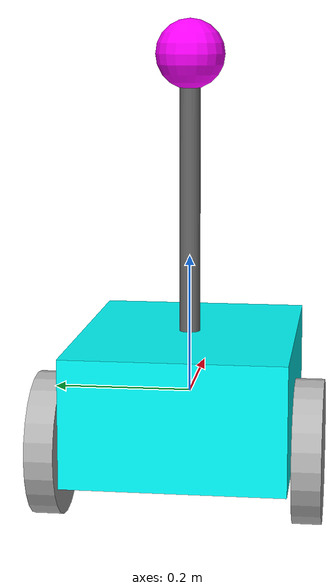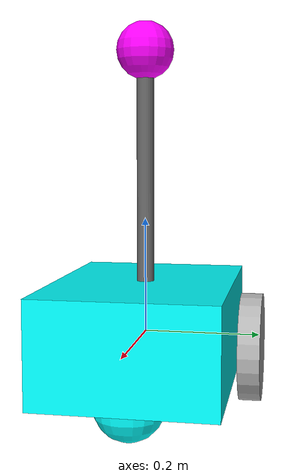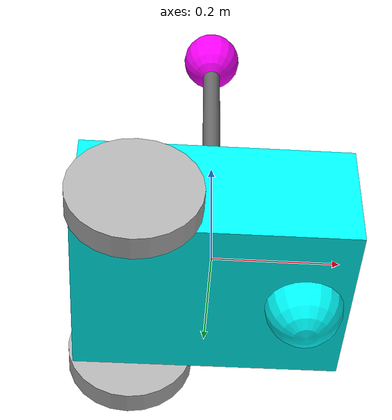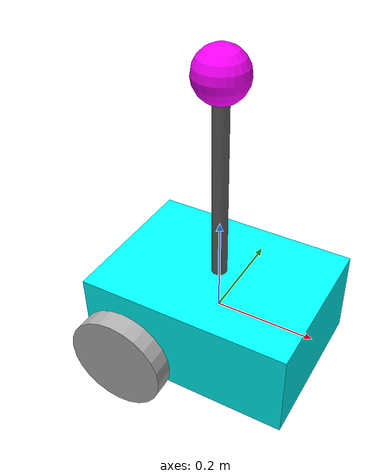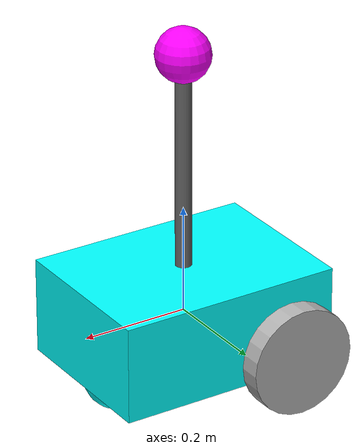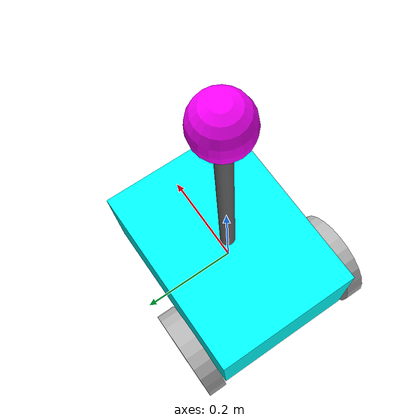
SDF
<?xml version="1.0" ?>
<!-- |    This document was autogenerated by xacro from /home/faza/topoMapWs/src/scenarios/models/ddmr/model.sdf.xacro | -->
<!-- |    EDITING THIS FILE BY HAND IS NOT RECOMMENDED                                 | -->
<sdf version="1.8">
  <model canonical_link="base_link" name="ddmr">
    <!-- Robot Base -->
    <link name="base_link">
      <must_be_base_link>true</must_be_base_link>
      <visual name="base_link_visual">
        <geometry>
          <box>
            <size>
            0.42 0.31 0.18
          </size>
          </box>
        </geometry>
        <material>
          <ambient>0 1 1 1</ambient>
          <diffuse>0 1 1 1</diffuse>
        </material>
      </visual>
      <collision name="base_link_collision">
        <geometry>
          <box>
            <size>
            0.42 0.31 0.18
          </size>
          </box>
        </geometry>
      </collision>
    </link>
    <!-- Robot Footprint -->
    <link name="base_footprint">
      <pose relative_to="base_joint"/>
      <inertial>
        <pose>0 0 0 1.5707963267948966 0 1.5707963267948966</pose>
        <mass>15</mass>
        <inertia>
          <ixx>0.261</ixx>
          <ixy>0.0</ixy>
          <ixz>0.0</ixz>
          <iyy>0.34062499999999996</iyy>
          <iyz>0.0</iyz>
          <izz>0.16062500000000002</izz>
        </inertia>
      </inertial>
    </link>
    <joint name="base_joint" type="fixed">
      <parent>base_link</parent>
      <child>base_footprint</child>
      <pose relative_to="base_link">0.0 0.0 -0.15000000000000002 0 0 0</pose>
    </joint>
    <link name="drivewhl_l_link">
      <pose relative_to="drivewhl_l_joint"/>
      <visual name="drivewhl_l_link_visual">
        <pose relative_to="drivewhl_l_link">0 0 0 1.5707963267948966 0 0</pose>
        <geometry>
          <cylinder>
            <radius>0.1</radius>
            <length>0.04</length>
          </cylinder>
        </geometry>
        <material>
          <ambient>0.3 0.3 0.3 1.0</ambient>
          <diffuse>0.7 0.7 0.7 1.0</diffuse>
        </material>
      </visual>
      <collision name="drivewhl_l_link_collision">
        <pose relative_to="drivewhl_l_link">0 0 0 1.5707963267948966 0 0</pose>
        <geometry>
          <cylinder>
            <radius>0.1</radius>
            <length>0.04</length>
          </cylinder>
        </geometry>
        <surface>
          <friction>
            <ode>
              <!-- high traction forward -->
              <mu>1.0</mu>
              <mu2>0.02</mu2>
              <!-- wheel rolling direction -->
              <fdir1>0 1 0</fdir1>
              <slip1>0.0</slip1>
              <slip2>0.4</slip2>
            </ode>
          </friction>
        </surface>
      </collision>
      <inertial>
        <pose>0 0 0 1.5707963267948966 0 0</pose>
        <mass>0.5</mass>
        <inertia>
          <ixx>0.0013166666666666667</ixx>
          <ixy>0.0</ixy>
          <ixz>0.0</ixz>
          <iyy>0.0013166666666666667</iyy>
          <iyz>0.0</iyz>
          <izz>0.0025000000000000005</izz>
        </inertia>
      </inertial>
    </link>
    <joint name="drivewhl_l_joint" type="revolute">
      <parent>base_link</parent>
      <child>drivewhl_l_link</child>
      <pose relative_to="base_link">-0.12 0.18 -0.05 0 0 0</pose>
      <axis>
        <xyz>0 1 0</xyz>
        <limit>
          <lower>-1e16</lower>
          <upper>1e16</upper>
        </limit>
        <dynamics>
          <damping>0.05</damping>
          <friction>0.0</friction>
        </dynamics>
      </axis>
    </joint>
    <link name="drivewhl_r_link">
      <pose relative_to="drivewhl_r_joint"/>
      <visual name="drivewhl_r_link_visual">
        <pose relative_to="drivewhl_r_link">0 0 0 1.5707963267948966 0 0</pose>
        <geometry>
          <cylinder>
            <radius>0.1</radius>
            <length>0.04</length>
          </cylinder>
        </geometry>
        <material>
          <ambient>0.3 0.3 0.3 1.0</ambient>
          <diffuse>0.7 0.7 0.7 1.0</diffuse>
        </material>
      </visual>
      <collision name="drivewhl_r_link_collision">
        <pose relative_to="drivewhl_r_link">0 0 0 1.5707963267948966 0 0</pose>
        <geometry>
          <cylinder>
            <radius>0.1</radius>
            <length>0.04</length>
          </cylinder>
        </geometry>
        <surface>
          <friction>
            <ode>
              <!-- high traction forward -->
              <mu>1.0</mu>
              <mu2>0.02</mu2>
              <!-- wheel rolling direction -->
              <fdir1>0 1 0</fdir1>
              <slip1>0.0</slip1>
              <slip2>0.4</slip2>
            </ode>
          </friction>
        </surface>
      </collision>
      <inertial>
        <pose>0 0 0 1.5707963267948966 0 0</pose>
        <mass>0.5</mass>
        <inertia>
          <ixx>0.0013166666666666667</ixx>
          <ixy>0.0</ixy>
          <ixz>0.0</ixz>
          <iyy>0.0013166666666666667</iyy>
          <iyz>0.0</iyz>
          <izz>0.0025000000000000005</izz>
        </inertia>
      </inertial>
    </link>
    <joint name="drivewhl_r_joint" type="revolute">
      <parent>base_link</parent>
      <child>drivewhl_r_link</child>
      <pose relative_to="base_link">-0.12 -0.18 -0.05 0 0 0</pose>
      <axis>
        <xyz>0 1 0</xyz>
        <limit>
          <lower>-1e16</lower>
          <upper>1e16</upper>
        </limit>
        <dynamics>
          <damping>0.05</damping>
          <friction>0.0</friction>
        </dynamics>
      </axis>
    </joint>
    <link name="front_caster">
      <pose relative_to="caster_joint"/>
      <visual name="front_caster_visual">
        <geometry>
          <sphere>
            <radius>0.060000000000000026</radius>
          </sphere>
        </geometry>
        <material>
          <ambient>0 1 1 1</ambient>
          <diffuse>0 1 1 1</diffuse>
        </material>
      </visual>
      <collision name="front_caster_collision">
        <geometry>
          <sphere>
            <radius>0.060000000000000026</radius>
          </sphere>
        </geometry>
        <surface>
          <friction>
            <ode>
              <mu>0.01</mu>
              <mu2>0.01</mu2>
            </ode>
          </friction>
        </surface>
      </collision>
      <inertial>
        <mass>0.5</mass>
        <inertia>
          <ixx>0.0007200000000000006</ixx>
          <ixy>0.0</ixy>
          <ixz>0.0</ixz>
          <iyy>0.0007200000000000006</iyy>
          <iyz>0.0</iyz>
          <izz>0.0007200000000000006</izz>
        </inertia>
      </inertial>
    </link>
    <joint name="caster_joint" type="fixed">
      <parent>base_link</parent>
      <child>front_caster</child>
      <pose relative_to="base_link">0.14 0.0 -0.09 0 0 0</pose>
    </joint>
    <!-- ================= LiDAR Mount ================= -->
    <link name="lidar_mount">
      <pose relative_to="base_link">
        0.0
        0.0
        0.29
        0 0 0
    </pose>
      <inertial>
        <mass>0.1</mass>
        <inertia>
          <ixx>0.0001</ixx>
          <iyy>0.0001</iyy>
          <izz>0.0001</izz>
          <ixy>0</ixy>
          <ixz>0</ixz>
          <iyz>0</iyz>
        </inertia>
      </inertial>
      <visual name="mount_visual">
        <geometry>
          <cylinder>
            <radius>0.015</radius>
            <length>0.4</length>
          </cylinder>
        </geometry>
        <material>
          <ambient>0.2 0.2 0.2 1</ambient>
          <diffuse>0.4 0.4 0.4 1</diffuse>
        </material>
      </visual>
      <collision name="mount_collision">
        <geometry>
          <cylinder>
            <radius>0.015</radius>
            <length>0.4</length>
          </cylinder>
        </geometry>
      </collision>
    </link>
    <joint name="lidar_mount_joint" type="fixed">
      <parent>base_link</parent>
      <child>lidar_mount</child>
    </joint>
    <!-- ================= LiDAR ================= -->
    <link name="lidar_link">
      <pose relative_to="lidar_mount">
        0.0
        0.0
        0.2
        0 0 0
    </pose>
      <inertial>
        <mass>1.0</mass>
        <inertia>
          <ixx>0.01</ixx>
          <iyy>0.01</iyy>
          <izz>0.01</izz>
          <ixy>0</ixy>
          <ixz>0</ixz>
          <iyz>0</iyz>
        </inertia>
      </inertial>
      <visual name="visual">
        <geometry>
          <sphere>
            <radius>0.05</radius>
          </sphere>
        </geometry>
        <material>
          <ambient>1 0 1 1</ambient>
          <diffuse>1 0 1 1</diffuse>
        </material>
      </visual>
      <collision name="collision">
        <geometry>
          <sphere>
            <radius>0.05</radius>
          </sphere>
        </geometry>
      </collision>
      <sensor name="lidar" type="gpu_lidar">
        <update_rate>10</update_rate>
        <topic>points</topic>
        <pose>0 0 0 0 0 0</pose>
        <ray>
          <scan>
            <horizontal>
              <samples>256</samples>
              <resolution>1</resolution>
              <min_angle>0</min_angle>
              <max_angle>6.283185307179586</max_angle>
            </horizontal>
            <vertical>
              <samples>64</samples>
              <resolution>1</resolution>
              <min_angle>-0.7853981633974483</min_angle>
              <max_angle>0.7853981633974483</max_angle>
            </vertical>
          </scan>
          <range>
            <min>0.1</min>
            <max>20.0</max>
            <resolution>0.01</resolution>
          </range>
        </ray>
        <always_on>true</always_on>
        <visualize>true</visualize>
      </sensor>
    </link>
    <joint name="lidar_joint" type="fixed">
      <parent>lidar_mount</parent>
      <child>lidar_link</child>
    </joint>
    <plugin filename="gz-sim-diff-drive-system" name="gz::sim::systems::DiffDrive">
      <!-- Wheel joints -->
      <left_joint>drivewhl_l_joint</left_joint>
      <right_joint>drivewhl_r_joint</right_joint>
      <!-- Robot geometry -->
      <wheel_separation>0.36</wheel_separation>
      <wheel_radius>0.10</wheel_radius>
      <!-- Command topic -->
      <topic>/cmd_vel</topic>
      <!-- Optional odometry -->
      <odom_topic>odom</odom_topic>
      <tf_topic>tf</tf_topic>
      <frame_id>odom</frame_id>
      <child_frame_id>base_link</child_frame_id>
    </plugin>
  </model>
</sdf>
